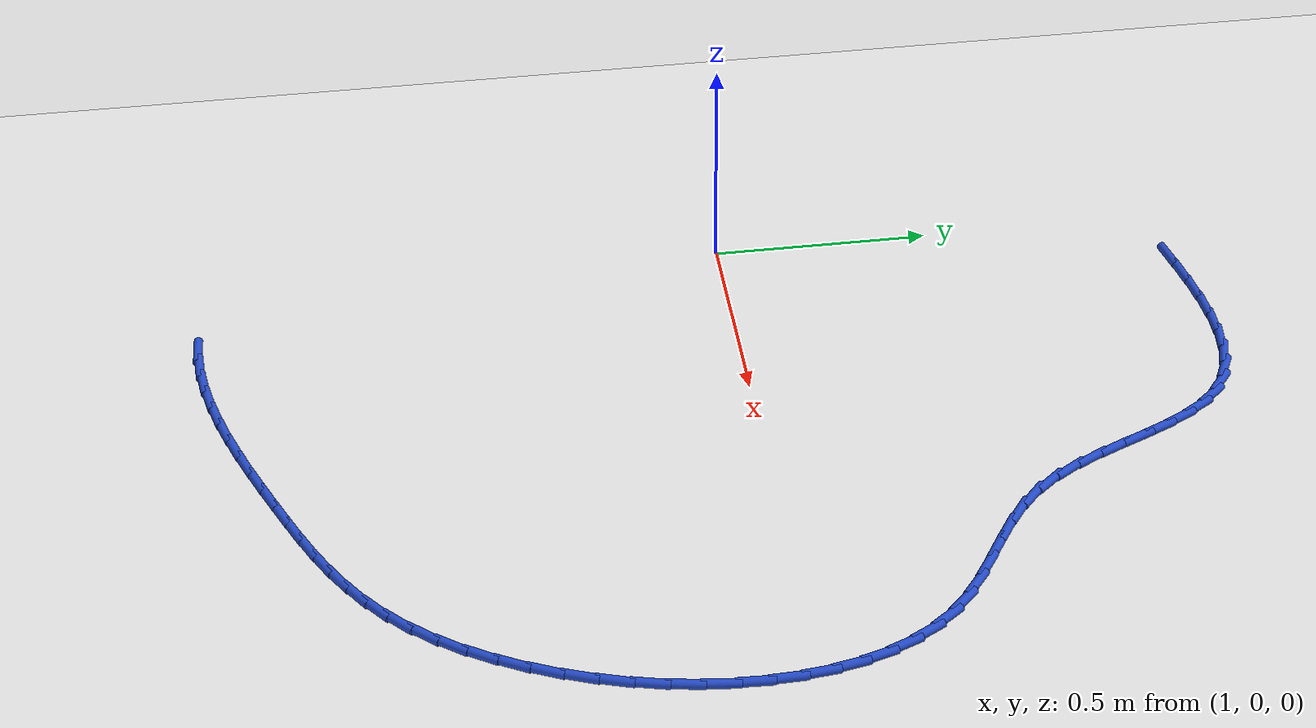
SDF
<sdf version="1.6">
 <world name="default">
  <model name="ground_plane">
   <static>1</static>
   <link name="link">
    <collision name="collision">
     <geometry><plane><normal>0 0 1</normal><size>100 100</size></plane></geometry>
     <surface><friction><ode><mu>100</mu><mu2>50</mu2></ode></friction></surface>
    </collision>
    <visual name="visual">
     <cast_shadows>0</cast_shadows>
     <geometry><plane><normal>0 0 1</normal><size>100 100</size></plane></geometry>
     <material>
      <script><uri>file://media/materials/scripts/gazebo.material</uri><name>Gazebo/WhiteGlow</name></script>
     </material>
    </visual>
   </link>
  </model>
  <model name="line">
   <link name="link_29">
    <pose>1.1731853826372598 1.050255317159458 0.01 0 1.57 0.16805897852117493</pose>
    <collision name="collision">
     <geometry><cylinder><radius>0.01</radius><length>0.08</length></cylinder></geometry>
    </collision>
    <visual name="visual">
     <material>
      <script><name>Gazebo/Blue</name><uri>file://media/materials/scripts/gazebo.material</uri></script>
     </material>
     <geometry><cylinder><radius>0.01</radius><length>0.08</length></cylinder></geometry>
    </visual>
   </link>
   <link name="link_30">
    <pose>1.2391497684147879 1.0614467866623114 0.01 0 1.57 0.13783572668305613</pose>
    <collision name="collision">
     <geometry><cylinder><radius>0.01</radius><length>0.08</length></cylinder></geometry>
    </collision>
    <visual name="visual">
     <material>
      <script><name>Gazebo/Blue</name><uri>file://media/materials/scripts/gazebo.material</uri></script>
     </material>
     <geometry><cylinder><radius>0.01</radius><length>0.08</length></cylinder></geometry>
    </visual>
   </link>
   <link name="link_31">
    <pose>1.3048202804145503 1.0705562921558265 0.01 0 1.57 0.09355577650517279</pose>
    <collision name="collision">
     <geometry><cylinder><radius>0.01</radius><length>0.08</length></cylinder></geometry>
    </collision>
    <visual name="visual">
     <material>
      <script><name>Gazebo/Blue</name><uri>file://media/materials/scripts/gazebo.material</uri></script>
     </material>
     <geometry><cylinder><radius>0.01</radius><length>0.08</length></cylinder></geometry>
    </visual>
   </link>
   <link name="link_32">
    <pose>1.3693519129086122 1.076611275242907 0.01 0 1.57 0.03241031479402491</pose>
    <collision name="collision">
     <geometry><cylinder><radius>0.01</radius><length>0.08</length></cylinder></geometry>
    </collision>
    <visual name="visual">
     <material>
      <script><name>Gazebo/Blue</name><uri>file://media/materials/scripts/gazebo.material</uri></script>
     </material>
     <geometry><cylinder><radius>0.01</radius><length>0.08</length></cylinder></geometry>
    </visual>
   </link>
   <link name="link_33">
    <pose>1.4318996601690406 1.0786391775264583 0.01 0 1.57 -0.04972110652336856</pose>
    <collision name="collision">
     <geometry><cylinder><radius>0.01</radius><length>0.08</length></cylinder></geometry>
    </collision>
    <visual name="visual">
     <material>
      <script><name>Gazebo/Blue</name><uri>file://media/materials/scripts/gazebo.material</uri></script>
     </material>
     <geometry><cylinder><radius>0.01</radius><length>0.08</length></cylinder></geometry>
    </visual>
   </link>
   <link name="link_34">
    <pose>1.4916185164679003 1.0756674406093865 0.01 0 1.57 -0.15825058848200615</pose>
    <collision name="collision">
     <geometry><cylinder><radius>0.01</radius><length>0.08</length></cylinder></geometry>
    </collision>
    <visual name="visual">
     <material>
      <script><name>Gazebo/Blue</name><uri>file://media/materials/scripts/gazebo.material</uri></script>
     </material>
     <geometry><cylinder><radius>0.01</radius><length>0.08</length></cylinder></geometry>
    </visual>
   </link>
   <link name="link_35">
    <pose>1.5476634760772583 1.0667235060945945 0.01 0 1.57 -0.2991108101994952</pose>
    <collision name="collision">
     <geometry><cylinder><radius>0.01</radius><length>0.08</length></cylinder></geometry>
    </collision>
    <visual name="visual">
     <material>
      <script><name>Gazebo/Blue</name><uri>file://media/materials/scripts/gazebo.material</uri></script>
     </material>
     <geometry><cylinder><radius>0.01</radius><length>0.08</length></cylinder></geometry>
    </visual>
   </link>
   <link name="link_36">
    <pose>1.59918953326918 1.0508348155849891 0.01 0 1.57 -0.47613173585131846</pose>
    <collision name="collision">
     <geometry><cylinder><radius>0.01</radius><length>0.08</length></cylinder></geometry>
    </collision>
    <visual name="visual">
     <material>
      <script><name>Gazebo/Blue</name><uri>file://media/materials/scripts/gazebo.material</uri></script>
     </material>
     <geometry><cylinder><radius>0.01</radius><length>0.08</length></cylinder></geometry>
    </visual>
   </link>
   <link name="link_37">
    <pose>1.645351682315732 1.0270288106834748 0.01 0 1.57 -0.6845639201576996</pose>
    <collision name="collision">
     <geometry><cylinder><radius>0.01</radius><length>0.08</length></cylinder></geometry>
    </collision>
    <visual name="visual">
     <material>
      <script><name>Gazebo/Blue</name><uri>file://media/materials/scripts/gazebo.material</uri></script>
     </material>
     <geometry><cylinder><radius>0.01</radius><length>0.08</length></cylinder></geometry>
    </visual>
   </link>
   <link name="link_38">
    <pose>1.6853468881240368 0.9943832115242469 0.01 0 1.57 -0.8787986128400678</pose>
    <collision name="collision">
     <geometry><cylinder><radius>0.01</radius><length>0.08</length></cylinder></geometry>
    </collision>
    <visual name="visual">
     <material>
      <script><name>Gazebo/Blue</name><uri>file://media/materials/scripts/gazebo.material</uri></script>
     </material>
     <geometry><cylinder><radius>0.01</radius><length>0.08</length></cylinder></geometry>
    </visual>
   </link>
   <link name="link_39">
    <pose>1.719434901261593 0.9532488974874402 0.01 0 1.57 -1.0181615843116683</pose>
    <collision name="collision">
     <geometry><cylinder><radius>0.01</radius><length>0.08</length></cylinder></geometry>
    </collision>
    <visual name="visual">
     <material>
      <script><name>Gazebo/Blue</name><uri>file://media/materials/scripts/gazebo.material</uri></script>
     </material>
     <geometry><cylinder><radius>0.01</radius><length>0.08</length></cylinder></geometry>
    </visual>
   </link>
   <link name="link_40">
    <pose>1.7489953998929937 0.9053183601222133 0.01 0 1.57 -1.1074368149421923</pose>
    <collision name="collision">
     <geometry><cylinder><radius>0.01</radius><length>0.08</length></cylinder></geometry>
    </collision>
    <visual name="visual">
     <material>
      <script><name>Gazebo/Blue</name><uri>file://media/materials/scripts/gazebo.material</uri></script>
     </material>
     <geometry><cylinder><radius>0.01</radius><length>0.08</length></cylinder></geometry>
    </visual>
   </link>
   <link name="link_41">
    <pose>1.7754614710320018 0.8523480718655634 0.01 0 1.57 -1.155497980455073</pose>
    <collision name="collision">
     <geometry><cylinder><radius>0.01</radius><length>0.08</length></cylinder></geometry>
    </collision>
    <visual name="visual">
     <material>
      <script><name>Gazebo/Blue</name><uri>file://media/materials/scripts/gazebo.material</uri></script>
     </material>
     <geometry><cylinder><radius>0.01</radius><length>0.08</length></cylinder></geometry>
    </visual>
   </link>
   <link name="link_42">
    <pose>1.8002662016923787 0.7960945051544897 0.01 0 1.57 -1.1686351894130835</pose>
    <collision name="collision">
     <geometry><cylinder><radius>0.01</radius><length>0.08</length></cylinder></geometry>
    </collision>
    <visual name="visual">
     <material>
      <script><name>Gazebo/Blue</name><uri>file://media/materials/scripts/gazebo.material</uri></script>
     </material>
     <geometry><cylinder><radius>0.01</radius><length>0.08</length></cylinder></geometry>
    </visual>
   </link>
   <link name="link_43">
    <pose>1.8248426788878875 0.7383141324259892 0.01 0 1.57 -1.1496271890330667</pose>
    <collision name="collision">
     <geometry><cylinder><radius>0.01</radius><length>0.08</length></cylinder></geometry>
    </collision>
    <visual name="visual">
     <material>
      <script><name>Gazebo/Blue</name><uri>file://media/materials/scripts/gazebo.material</uri></script>
     </material>
     <geometry><cylinder><radius>0.01</radius><length>0.08</length></cylinder></geometry>
    </visual>
   </link>
   <link name="link_44">
    <pose>1.8506239896322905 0.6807634261170616 0.01 0 1.57 -1.0980202714194969</pose>
    <collision name="collision">
     <geometry><cylinder><radius>0.01</radius><length>0.08</length></cylinder></geometry>
    </collision>
    <visual name="visual">
     <material>
      <script><name>Gazebo/Blue</name><uri>file://media/materials/scripts/gazebo.material</uri></script>
     </material>
     <geometry><cylinder><radius>0.01</radius><length>0.08</length></cylinder></geometry>
    </visual>
   </link>
   <link name="link_45">
    <pose>1.87904322093935 0.625198858664704 0.01 0 1.57 -1.0107895730513323</pose>
    <collision name="collision">
     <geometry><cylinder><radius>0.01</radius><length>0.08</length></cylinder></geometry>
    </collision>
    <visual name="visual">
     <material>
      <script><name>Gazebo/Blue</name><uri>file://media/materials/scripts/gazebo.material</uri></script>
     </material>
     <geometry><cylinder><radius>0.01</radius><length>0.08</length></cylinder></geometry>
    </visual>
   </link>
   <link name="link_46">
    <pose>1.9115334598228282 0.5733769025059154 0.01 0 1.57 -0.8841977294416148</pose>
    <collision name="collision">
     <geometry><cylinder><radius>0.01</radius><length>0.08</length></cylinder></geometry>
    </collision>
    <visual name="visual">
     <material>
      <script><name>Gazebo/Blue</name><uri>file://media/materials/scripts/gazebo.material</uri></script>
     </material>
     <geometry><cylinder><radius>0.01</radius><length>0.08</length></cylinder></geometry>
    </visual>
   </link>
   <link name="link_47">
    <pose>1.9495136724546516 0.527038871764606 0.01 0 1.57 -0.7450855514832868</pose>
    <collision name="collision">
     <geometry><cylinder><radius>0.01</radius><length>0.08</length></cylinder></geometry>
    </collision>
    <visual name="visual">
     <material>
      <script><name>Gazebo/Blue</name><uri>file://media/materials/scripts/gazebo.material</uri></script>
     </material>
     <geometry><cylinder><radius>0.01</radius><length>0.08</length></cylinder></geometry>
    </visual>
   </link>
   <link name="link_48">
    <pose>1.9932526860506352 0.4866914398405333 0.01 0 1.57 -0.6453860728794129</pose>
    <collision name="collision">
     <geometry><cylinder><radius>0.01</radius><length>0.08</length></cylinder></geometry>
    </collision>
    <visual name="visual">
     <material>
      <script><name>Gazebo/Blue</name><uri>file://media/materials/scripts/gazebo.material</uri></script>
     </material>
     <geometry><cylinder><radius>0.01</radius><length>0.08</length></cylinder></geometry>
    </visual>
   </link>
   <link name="link_49">
    <pose>2.041036430062422 0.4507126970448867 0.01 0 1.57 -0.5902735333458313</pose>
    <collision name="collision">
     <geometry><cylinder><radius>0.01</radius><length>0.08</length></cylinder></geometry>
    </collision>
    <visual name="visual">
     <material>
      <script><name>Gazebo/Blue</name><uri>file://media/materials/scripts/gazebo.material</uri></script>
     </material>
     <geometry><cylinder><radius>0.01</radius><length>0.08</length></cylinder></geometry>
    </visual>
   </link>
   <link name="link_50">
    <pose>2.0909545100017484 0.41726998564832474 0.01 0 1.57 -0.5784337236671261</pose>
    <collision name="collision">
     <geometry><cylinder><radius>0.01</radius><length>0.08</length></cylinder></geometry>
    </collision>
    <visual name="visual">
     <material>
      <script><name>Gazebo/Blue</name><uri>file://media/materials/scripts/gazebo.material</uri></script>
     </material>
     <geometry><cylinder><radius>0.01</radius><length>0.08</length></cylinder></geometry>
    </visual>
   </link>
   <link name="link_51">
    <pose>2.1410965313803465 0.3845306479215064 0.01 0 1.57 -0.6100292691899798</pose>
    <collision name="collision">
     <geometry><cylinder><radius>0.01</radius><length>0.08</length></cylinder></geometry>
    </collision>
    <visual name="visual">
     <material>
      <script><name>Gazebo/Blue</name><uri>file://media/materials/scripts/gazebo.material</uri></script>
     </material>
     <geometry><cylinder><radius>0.01</radius><length>0.08</length></cylinder></geometry>
    </visual>
   </link>
   <link name="link_52">
    <pose>2.1895520997099522 0.35066202613509007 0.01 0 1.57 -0.6874359904719602</pose>
    <collision name="collision">
     <geometry><cylinder><radius>0.01</radius><length>0.08</length></cylinder></geometry>
    </collision>
    <visual name="visual">
     <material>
      <script><name>Gazebo/Blue</name><uri>file://media/materials/scripts/gazebo.material</uri></script>
     </material>
     <geometry><cylinder><radius>0.01</radius><length>0.08</length></cylinder></geometry>
    </visual>
   </link>
   <link name="link_53">
    <pose>2.2344108205023 0.3138314625597352 0.01 0 1.57 -0.8109353542652429</pose>
    <collision name="collision">
     <geometry><cylinder><radius>0.01</radius><length>0.08</length></cylinder></geometry>
    </collision>
    <visual name="visual">
     <material>
      <script><name>Gazebo/Blue</name><uri>file://media/materials/scripts/gazebo.material</uri></script>
     </material>
     <geometry><cylinder><radius>0.01</radius><length>0.08</length></cylinder></geometry>
    </visual>
   </link>
   <link name="link_54">
    <pose>2.2738583878158782 0.2723158741126623 0.01 0 1.57 -0.9485019513490102</pose>
    <collision name="collision">
     <geometry><cylinder><radius>0.01</radius><length>0.08</length></cylinder></geometry>
    </collision>
    <visual name="visual">
     <material>
      <script><name>Gazebo/Blue</name><uri>file://media/materials/scripts/gazebo.material</uri></script>
     </material>
     <geometry><cylinder><radius>0.01</radius><length>0.08</length></cylinder></geometry>
    </visual>
   </link>
   <link name="link_55">
    <pose>2.307267098400346 0.2257453209824551 0.01 0 1.57 -1.076313020139515</pose>
    <collision name="collision">
     <geometry><cylinder><radius>0.01</radius><length>0.08</length></cylinder></geometry>
    </collision>
    <visual name="visual">
     <material>
      <script><name>Gazebo/Blue</name><uri>file://media/materials/scripts/gazebo.material</uri></script>
     </material>
     <geometry><cylinder><radius>0.01</radius><length>0.08</length></cylinder></geometry>
    </visual>
   </link>
   <link name="link_56">
    <pose>2.3348091849158847 0.17466207087491292 0.01 0 1.57 -1.1926728272983855</pose>
    <collision name="collision">
     <geometry><cylinder><radius>0.01</radius><length>0.08</length></cylinder></geometry>
    </collision>
    <visual name="visual">
     <material>
      <script><name>Gazebo/Blue</name><uri>file://media/materials/scripts/gazebo.material</uri></script>
     </material>
     <geometry><cylinder><radius>0.01</radius><length>0.08</length></cylinder></geometry>
    </visual>
   </link>
   <link name="link_57">
    <pose>2.3566718459059364 0.119625457852074 0.01 0 1.57 -1.29763124217726</pose>
    <collision name="collision">
     <geometry><cylinder><radius>0.01</radius><length>0.08</length></cylinder></geometry>
    </collision>
    <visual name="visual">
     <material>
      <script><name>Gazebo/Blue</name><uri>file://media/materials/scripts/gazebo.material</uri></script>
     </material>
     <geometry><cylinder><radius>0.01</radius><length>0.08</length></cylinder></geometry>
    </visual>
   </link>
   <link name="link_58">
    <pose>2.373042279913943 0.06119481597597488 0.01 0 1.57 -1.392108278147809</pose>
    <collision name="collision">
     <geometry><cylinder><radius>0.01</radius><length>0.08</length></cylinder></geometry>
    </collision>
    <visual name="visual">
     <material>
      <script><name>Gazebo/Blue</name><uri>file://media/materials/scripts/gazebo.material</uri></script>
     </material>
     <geometry><cylinder><radius>0.01</radius><length>0.08</length></cylinder></geometry>
    </visual>
   </link>
   <link name="link_59">
    <pose>2.3841076854833485 -7.052069134634228e-05 0.01 0 1.57 -1.4774656448175532</pose>
    <collision name="collision">
     <geometry><cylinder><radius>0.01</radius><length>0.08</length></cylinder></geometry>
    </collision>
    <visual name="visual">
     <material>
      <script><name>Gazebo/Blue</name><uri>file://media/materials/scripts/gazebo.material</uri></script>
     </material>
     <geometry><cylinder><radius>0.01</radius><length>0.08</length></cylinder></geometry>
    </visual>
   </link>
   <link name="link_60">
    <pose>2.390055261157595 -0.06361121808785312 0.01 0 1.57 -1.5552138404474642</pose>
    <collision name="collision">
     <geometry><cylinder><radius>0.01</radius><length>0.08</length></cylinder></geometry>
    </collision>
    <visual name="visual">
     <material>
      <script><name>Gazebo/Blue</name><uri>file://media/materials/scripts/gazebo.material</uri></script>
     </material>
     <geometry><cylinder><radius>0.01</radius><length>0.08</length></cylinder></geometry>
    </visual>
   </link>
   <link name="link_61">
    <pose>2.3910722054801266 -0.12886794215150724 0.01 0 1.57 1.5147446246549485</pose>
    <collision name="collision">
     <geometry><cylinder><radius>0.01</radius><length>0.08</length></cylinder></geometry>
    </collision>
    <visual name="visual">
     <material>
      <script><name>Gazebo/Blue</name><uri>file://media/materials/scripts/gazebo.material</uri></script>
     </material>
     <geometry><cylinder><radius>0.01</radius><length>0.08</length></cylinder></geometry>
    </visual>
   </link>
   <link name="link_62">
    <pose>2.387345716994385 -0.1952813588202718 0.01 0 1.57 1.4478172240395284</pose>
    <collision name="collision">
     <geometry><cylinder><radius>0.01</radius><length>0.08</length></cylinder></geometry>
    </collision>
    <visual name="visual">
     <material>
      <script><name>Gazebo/Blue</name><uri>file://media/materials/scripts/gazebo.material</uri></script>
     </material>
     <geometry><cylinder><radius>0.01</radius><length>0.08</length></cylinder></geometry>
    </visual>
   </link>
   <link name="link_63">
    <pose>2.3790629942438137 -0.26229213403211027 0.01 0 1.57 1.3842944249849063</pose>
    <collision name="collision">
     <geometry><cylinder><radius>0.01</radius><length>0.08</length></cylinder></geometry>
    </collision>
    <visual name="visual">
     <material>
      <script><name>Gazebo/Blue</name><uri>file://media/materials/scripts/gazebo.material</uri></script>
     </material>
     <geometry><cylinder><radius>0.01</radius><length>0.08</length></cylinder></geometry>
    </visual>
   </link>
   <link name="link_64">
    <pose>2.3664112357718574 -0.3293409337249835 0.01 0 1.57 1.3229658924120096</pose>
    <collision name="collision">
     <geometry><cylinder><radius>0.01</radius><length>0.08</length></cylinder></geometry>
    </collision>
    <visual name="visual">
     <material>
      <script><name>Gazebo/Blue</name><uri>file://media/materials/scripts/gazebo.material</uri></script>
     </material>
     <geometry><cylinder><radius>0.01</radius><length>0.08</length></cylinder></geometry>
    </visual>
   </link>
   <link name="link_65">
    <pose>2.349577640121956 -0.39586842383685517 0.01 0 1.57 1.2626847495342548</pose>
    <collision name="collision">
     <geometry><cylinder><radius>0.01</radius><length>0.08</length></cylinder></geometry>
    </collision>
    <visual name="visual">
     <material>
      <script><name>Gazebo/Blue</name><uri>file://media/materials/scripts/gazebo.material</uri></script>
     </material>
     <geometry><cylinder><radius>0.01</radius><length>0.08</length></cylinder></geometry>
    </visual>
   </link>
   <link name="link_66">
    <pose>2.3287494058375544 -0.4613152703056887 0.01 0 1.57 1.2023319879833712</pose>
    <collision name="collision">
     <geometry><cylinder><radius>0.01</radius><length>0.08</length></cylinder></geometry>
    </collision>
    <visual name="visual">
     <material>
      <script><name>Gazebo/Blue</name><uri>file://media/materials/scripts/gazebo.material</uri></script>
     </material>
     <geometry><cylinder><radius>0.01</radius><length>0.08</length></cylinder></geometry>
    </visual>
   </link>
   <link name="link_67">
    <pose>2.304113731462096 -0.525122139069445 0.01 0 1.57 1.1407776175580824</pose>
    <collision name="collision">
     <geometry><cylinder><radius>0.01</radius><length>0.08</length></cylinder></geometry>
    </collision>
    <visual name="visual">
     <material>
      <script><name>Gazebo/Blue</name><uri>file://media/materials/scripts/gazebo.material</uri></script>
     </material>
     <geometry><cylinder><radius>0.01</radius><length>0.08</length></cylinder></geometry>
    </visual>
   </link>
   <link name="link_68">
    <pose>2.2758578155390223 -0.5867296960660877 0.01 0 1.57 1.0768406823931453</pose>
    <collision name="collision">
     <geometry><cylinder><radius>0.01</radius><length>0.08</length></cylinder></geometry>
    </collision>
    <visual name="visual">
     <material>
      <script><name>Gazebo/Blue</name><uri>file://media/materials/scripts/gazebo.material</uri></script>
     </material>
     <geometry><cylinder><radius>0.01</radius><length>0.08</length></cylinder></geometry>
    </visual>
   </link>
   <link name="link_69">
    <pose>2.2441688566117772 -0.6455786072335793 0.01 0 1.57 1.0092503283251153</pose>
    <collision name="collision">
     <geometry><cylinder><radius>0.01</radius><length>0.08</length></cylinder></geometry>
    </collision>
    <visual name="visual">
     <material>
      <script><name>Gazebo/Blue</name><uri>file://media/materials/scripts/gazebo.material</uri></script>
     </material>
     <geometry><cylinder><radius>0.01</radius><length>0.08</length></cylinder></geometry>
    </visual>
   </link>
   <link name="link_70">
    <pose>2.209234053223803 -0.7011095385098831 0.01 0 1.57 0.9366121755949576</pose>
    <collision name="collision">
     <geometry><cylinder><radius>0.01</radius><length>0.08</length></cylinder></geometry>
    </collision>
    <visual name="visual">
     <material>
      <script><name>Gazebo/Blue</name><uri>file://media/materials/scripts/gazebo.material</uri></script>
     </material>
     <geometry><cylinder><radius>0.01</radius><length>0.08</length></cylinder></geometry>
    </visual>
   </link>
   <link name="link_71">
    <pose>2.1712406039185446 -0.7527631558329608 0.01 0 1.57 0.8573890908013811</pose>
    <collision name="collision">
     <geometry><cylinder><radius>0.01</radius><length>0.08</length></cylinder></geometry>
    </collision>
    <visual name="visual">
     <material>
      <script><name>Gazebo/Blue</name><uri>file://media/materials/scripts/gazebo.material</uri></script>
     </material>
     <geometry><cylinder><radius>0.01</radius><length>0.08</length></cylinder></geometry>
    </visual>
   </link>
   <link name="link_72">
    <pose>2.1303757072394425 -0.799980125140775 0.01 0 1.57 0.7709294394626595</pose>
    <collision name="collision">
     <geometry><cylinder><radius>0.01</radius><length>0.08</length></cylinder></geometry>
    </collision>
    <visual name="visual">
     <material>
      <script><name>Gazebo/Blue</name><uri>file://media/materials/scripts/gazebo.material</uri></script>
     </material>
     <geometry><cylinder><radius>0.01</radius><length>0.08</length></cylinder></geometry>
    </visual>
   </link>
   <link name="link_73">
    <pose>2.0868306463754562 -0.8422829893925526 0.01 0 1.57 0.6864533907772916</pose>
    <collision name="collision">
     <geometry><cylinder><radius>0.01</radius><length>0.08</length></cylinder></geometry>
    </collision>
    <visual name="visual">
     <material>
      <script><name>Gazebo/Blue</name><uri>file://media/materials/scripts/gazebo.material</uri></script>
     </material>
     <geometry><cylinder><radius>0.01</radius><length>0.08</length></cylinder></geometry>
    </visual>
   </link>
   <link name="link_74">
    <pose>2.0408354543842915 -0.8799710355306647 0.01 0 1.57 0.6116393891802113</pose>
    <collision name="collision">
     <geometry><cylinder><radius>0.01</radius><length>0.08</length></cylinder></geometry>
    </collision>
    <visual name="visual">
     <material>
      <script><name>Gazebo/Blue</name><uri>file://media/materials/scripts/gazebo.material</uri></script>
     </material>
     <geometry><cylinder><radius>0.01</radius><length>0.08</length></cylinder></geometry>
    </visual>
   </link>
   <link name="link_75">
    <pose>1.9926415584192354 -0.9137723967247062 0.01 0 1.57 0.5486310498918077</pose>
    <collision name="collision">
     <geometry><cylinder><radius>0.01</radius><length>0.08</length></cylinder></geometry>
    </collision>
    <visual name="visual">
     <material>
      <script><name>Gazebo/Blue</name><uri>file://media/materials/scripts/gazebo.material</uri></script>
     </material>
     <geometry><cylinder><radius>0.01</radius><length>0.08</length></cylinder></geometry>
    </visual>
   </link>
   <link name="link_76">
    <pose>1.942500610333438 -0.9444197102696019 0.01 0 1.57 0.49862580876679047</pose>
    <collision name="collision">
     <geometry><cylinder><radius>0.01</radius><length>0.08</length></cylinder></geometry>
    </collision>
    <visual name="visual">
     <material>
      <script><name>Gazebo/Blue</name><uri>file://media/materials/scripts/gazebo.material</uri></script>
     </material>
     <geometry><cylinder><radius>0.01</radius><length>0.08</length></cylinder></geometry>
    </visual>
   </link>
   <link name="link_77">
    <pose>1.8906642619800462 -0.9726456134602738 0.01 0 1.57 0.46210109900853447</pose>
    <collision name="collision">
     <geometry><cylinder><radius>0.01</radius><length>0.08</length></cylinder></geometry>
    </collision>
    <visual name="visual">
     <material>
      <script><name>Gazebo/Blue</name><uri>file://media/materials/scripts/gazebo.material</uri></script>
     </material>
     <geometry><cylinder><radius>0.01</radius><length>0.08</length></cylinder></geometry>
    </visual>
   </link>
   <link name="link_78">
    <pose>1.8373841652122085 -0.9991827435916452 0.01 0 1.57 0.43904603030389866</pose>
    <collision name="collision">
     <geometry><cylinder><radius>0.01</radius><length>0.08</length></cylinder></geometry>
    </collision>
    <visual name="visual">
     <material>
      <script><name>Gazebo/Blue</name><uri>file://media/materials/scripts/gazebo.material</uri></script>
     </material>
     <geometry><cylinder><radius>0.01</radius><length>0.08</length></cylinder></geometry>
    </visual>
   </link>
   <link name="link_79">
    <pose>1.7829119718830737 -1.024763737958638 0.01 0 1.57 0.428512306641209</pose>
    <collision name="collision">
     <geometry><cylinder><radius>0.01</radius><length>0.08</length></cylinder></geometry>
    </collision>
    <visual name="visual">
     <material>
      <script><name>Gazebo/Blue</name><uri>file://media/materials/scripts/gazebo.material</uri></script>
     </material>
     <geometry><cylinder><radius>0.01</radius><length>0.08</length></cylinder></geometry>
    </visual>
   </link>
   <link name="link_80">
    <pose>1.727495567251269 -1.050079151089371 0.01 0 1.57 0.41982884288839106</pose>
    <collision name="collision">
     <geometry><cylinder><radius>0.01</radius><length>0.08</length></cylinder></geometry>
    </collision>
    <visual name="visual">
     <material>
      <script><name>Gazebo/Blue</name><uri>file://media/materials/scripts/gazebo.material</uri></script>
     </material>
     <geometry><cylinder><radius>0.01</radius><length>0.08</length></cylinder></geometry>
    </visual>
   </link>
   <link name="link_81">
    <pose>1.671323149846837 -1.0751526797800262 0.01 0 1.57 0.404662659907882</pose>
    <collision name="collision">
     <geometry><cylinder><radius>0.01</radius><length>0.08</length></cylinder></geometry>
    </collision>
    <visual name="visual">
     <material>
      <script><name>Gazebo/Blue</name><uri>file://media/materials/scripts/gazebo.material</uri></script>
     </material>
     <geometry><cylinder><radius>0.01</radius><length>0.08</length></cylinder></geometry>
    </visual>
   </link>
   <link name="link_82">
    <pose>1.6145352077183082 -1.0994749692716448 0.01 0 1.57 0.3826282764252196</pose>
    <collision name="collision">
     <geometry><cylinder><radius>0.01</radius><length>0.08</length></cylinder></geometry>
    </collision>
    <visual name="visual">
     <material>
      <script><name>Gazebo/Blue</name><uri>file://media/materials/scripts/gazebo.material</uri></script>
     </material>
     <geometry><cylinder><radius>0.01</radius><length>0.08</length></cylinder></geometry>
    </visual>
   </link>
   <link name="link_83">
    <pose>1.5572708952931298 -1.1225217647504195 0.01 0 1.57 0.35337906582585277</pose>
    <collision name="collision">
     <geometry><cylinder><radius>0.01</radius><length>0.08</length></cylinder></geometry>
    </collision>
    <visual name="visual">
     <material>
      <script><name>Gazebo/Blue</name><uri>file://media/materials/scripts/gazebo.material</uri></script>
     </material>
     <geometry><cylinder><radius>0.01</radius><length>0.08</length></cylinder></geometry>
    </visual>
   </link>
   <link name="link_84">
    <pose>1.4996693669987502 -1.1437688114025426 0.01 0 1.57 0.31639260342616504</pose>
    <collision name="collision">
     <geometry><cylinder><radius>0.01</radius><length>0.08</length></cylinder></geometry>
    </collision>
    <visual name="visual">
     <material>
      <script><name>Gazebo/Blue</name><uri>file://media/materials/scripts/gazebo.material</uri></script>
     </material>
     <geometry><cylinder><radius>0.01</radius><length>0.08</length></cylinder></geometry>
    </visual>
   </link>
   <link name="link_85">
    <pose>1.4418697772626163 -1.1626918544142055 0.01 0 1.57 0.2709946636709107</pose>
    <collision name="collision">
     <geometry><cylinder><radius>0.01</radius><length>0.08</length></cylinder></geometry>
    </collision>
    <visual name="visual">
     <material>
      <script><name>Gazebo/Blue</name><uri>file://media/materials/scripts/gazebo.material</uri></script>
     </material>
     <geometry><cylinder><radius>0.01</radius><length>0.08</length></cylinder></geometry>
    </visual>
   </link>
   <link name="link_86">
    <pose>1.3840112805121776 -1.1787666389715996 0.01 0 1.57 0.21640265500201844</pose>
    <collision name="collision">
     <geometry><cylinder><radius>0.01</radius><length>0.08</length></cylinder></geometry>
    </collision>
    <visual name="visual">
     <material>
      <script><name>Gazebo/Blue</name><uri>file://media/materials/scripts/gazebo.material</uri></script>
     </material>
     <geometry><cylinder><radius>0.01</radius><length>0.08</length></cylinder></geometry>
    </visual>
   </link>
   <link name="link_87">
    <pose>1.3262330311748811 -1.1914689102609175 0.01 0 1.57 0.15180564988422846</pose>
    <collision name="collision">
     <geometry><cylinder><radius>0.01</radius><length>0.08</length></cylinder></geometry>
    </collision>
    <visual name="visual">
     <material>
      <script><name>Gazebo/Blue</name><uri>file://media/materials/scripts/gazebo.material</uri></script>
     </material>
     <geometry><cylinder><radius>0.01</radius><length>0.08</length></cylinder></geometry>
    </visual>
   </link>
   <link name="link_88">
    <pose>1.2686741836781752 -1.2002744134683516 0.01 0 1.57 0.07650177049351928</pose>
    <collision name="collision">
     <geometry><cylinder><radius>0.01</radius><length>0.08</length></cylinder></geometry>
    </collision>
    <visual name="visual">
     <material>
      <script><name>Gazebo/Blue</name><uri>file://media/materials/scripts/gazebo.material</uri></script>
     </material>
     <geometry><cylinder><radius>0.01</radius><length>0.08</length></cylinder></geometry>
    </visual>
   </link>
   <link name="link_89">
    <pose>1.211473892449507 -1.2046588937800926 0.01 0 1.57 -0.009889834090857912</pose>
    <collision name="collision">
     <geometry><cylinder><radius>0.01</radius><length>0.08</length></cylinder></geometry>
    </collision>
    <visual name="visual">
     <material>
      <script><name>Gazebo/Blue</name><uri>file://media/materials/scripts/gazebo.material</uri></script>
     </material>
     <geometry><cylinder><radius>0.01</radius><length>0.08</length></cylinder></geometry>
    </visual>
   </link>
  </model>
 </world>
</sdf>
